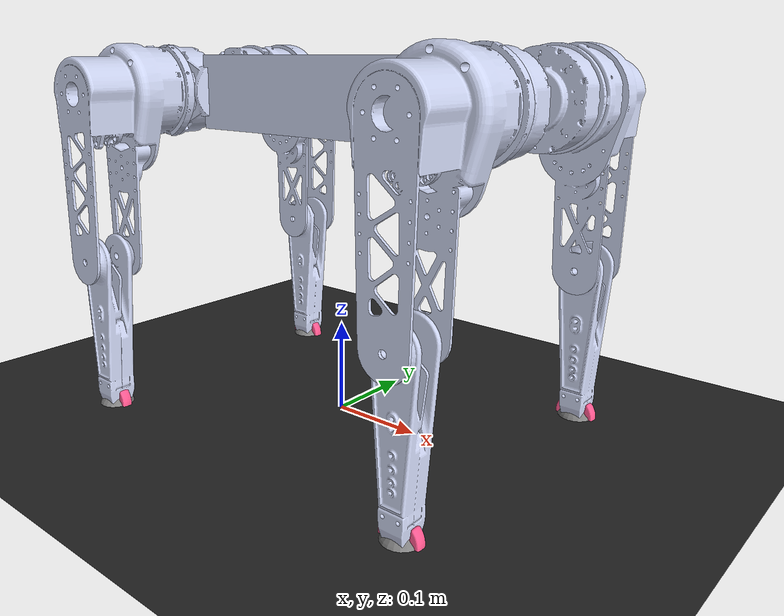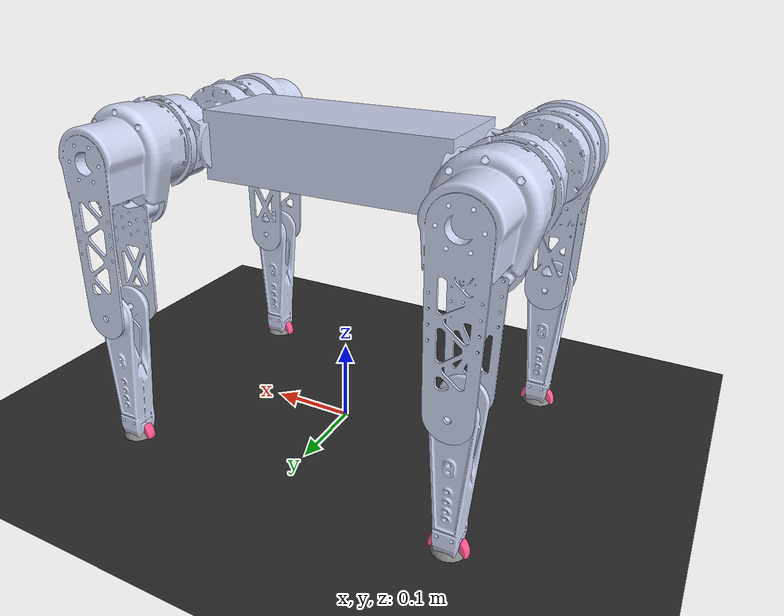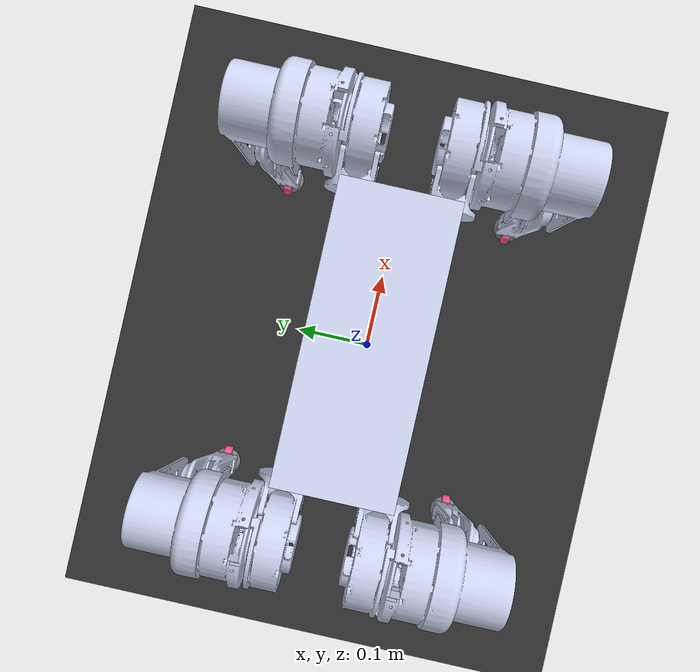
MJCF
<mujoco model="dog_urdf">
  <compiler meshdir="/root/gpufree-data/workspace/legged_gym/resources/robots/dog_urdf/meshes" angle="radian" autolimits="true"/>
  <option timestep="0.005" gravity="0 0 -9.81"/>

  <default>
    <joint damping="0.001" armature="0.01" frictionloss="0.1"/>
  </default>

  <asset>
    <mesh file="FL_hip.STL" name="FL_hip"/>
    <mesh file="FL_thigh.STL" name="FL_thigh"/>
    <mesh file="FL_calf.STL" name="FL_calf"/>
    <mesh file="FL_foot.STL" name="FL_foot"/>
    <mesh file="FR_hip.STL" name="FR_hip"/>
    <mesh file="FR_thigh.STL" name="FR_thigh"/>
    <mesh file="FR_calf.STL" name="FR_calf"/>
    <mesh file="FR_foot.STL" name="FR_foot"/>
    <mesh file="RL_hip.STL" name="RL_hip"/>
    <mesh file="RL_thigh.STL" name="RL_thigh"/>
    <mesh file="RL_calf.STL" name="RL_calf"/>
    <mesh file="RL_foot.STL" name="RL_foot"/>
    <mesh file="RR_hip.STL" name="RR_hip"/>
    <mesh file="RR_thigh.STL" name="RR_thigh"/>
    <mesh file="RR_calf.STL" name="RR_calf"/>
    <mesh file="RR_foot.STL" name="RR_foot"/>

    <texture name="grid" type="2d" builtin="checker" rgb1="0.15 0.15 0.15" rgb2="0.2 0.2 0.2" width="512" height="512"/>
    <texture name="skybox" type="skybox" builtin="gradient" rgb1="0.05 0.05 0.1" rgb2="0.02 0.02 0.05" width="512" height="512"/>
    <material name="groundplane" texture="grid" texrepeat="30 30" texuniform="true" reflectance="0.1"/>
    <material name="wall_material" rgba="0.25 0.25 0.28 1"/>
    <material name="body_material" rgba="0.79 0.82 0.93 1"/>
    <material name="foot_material" rgba="1 0.34 0.56 1"/>
  </asset>

  <worldbody>
    <light pos="0 0 4" dir="0 0 -1" diffuse="0.35 0.35 0.4" ambient="0.1 0.1 0.12" specular="0.1 0.1 0.1" castshadow="true"/>
    <light pos="3 -3 3" dir="-0.5 0.5 -1" diffuse="0.2 0.18 0.15" specular="0.05 0.05 0.05" castshadow="false"/>
    <light pos="-2 2 3" dir="0.3 -0.3 -1" diffuse="0.1 0.1 0.15" castshadow="false"/>
    <geom name="ground" type="plane" size="20 20 0.1" pos="0 0 0" material="groundplane" friction="2.0 0.5 0.01"/>

    <body name="base_link" pos="0 0 0.35">
    <inertial pos="-0.0023050784941594 0.000787651476062384 0.00938957145256008" mass="9.000" diaginertia="0.014806 0.015101 0.015290"/>
      <freejoint/>
      <geom type="box" size="0.15 0.06 0.04" material="body_material"/>

      <body name="FL_hip" pos="0.1426 0.046487 0">
      <inertial pos="0.0586708362293079 0.00174712967469963 -7.8795421490147E-05" mass="0.246" diaginertia="0.000156 0.000264 0.000137"/>
        <joint name="FL_hip_joint" type="hinge" axis="1 0 0" range="-0.5 0.5"/>
        <geom type="mesh" mesh="FL_hip" material="body_material"/>

        <body name="FL_thigh" pos="0.0645133382530963 0.0204632257018415 0">
      <inertial pos="3.96131492397256E-06 0.0530216135226285 -0.0127549994713949" mass="1.047" diaginertia="0.001070 0.001536 0.000827"/>
          <joint name="FL_thigh_joint" type="hinge" axis="0 1 0" range="-1.90 1.92"/>
          <geom type="mesh" mesh="FL_thigh" material="body_material"/>

          <body name="FL_calf" pos="-1.42640517181852E-05 0.0922000000000003 -0.179998920942403">
      <inertial pos="3.05292895786818E-05 -9.36885009469417E-05 -0.0670819670227258" mass="0.187" diaginertia="0.000372 0.000389 0.000025"/>
            <joint name="FL_calf_joint" type="hinge" axis="0 1 0" range="-2.80 -0.28"/>
            <geom type="mesh" mesh="FL_calf" material="body_material" group="1"/>

        <body name="FL_foot" pos="0 0 -0.181256552442634">
      <inertial pos="3.03153155772895E-08 3.64375196681976E-13 0.00474142838422875" mass="0.019" diaginertia="0.000002 0.000003 0.000003"/>
          <geom type="mesh" mesh="FL_foot" material="foot_material" group="1"/>
          <geom type="sphere" size="0.022" friction="0.8 0.5 0.01"/>
        </body>
          </body>
        </body>
      </body>

      <body name="FR_hip" pos="0.1426 -0.046513 0">
      <inertial pos="0.0586708362293078 -0.00172067827101646 8.04098946586701E-05" mass="0.246" diaginertia="0.000156 0.000264 0.000137"/>
        <joint name="FR_hip_joint" type="hinge" axis="-1 0 0" range="-0.5 0.5"/>
        <geom type="mesh" mesh="FR_hip" material="body_material"/>

        <body name="FR_thigh" pos="0.0645133382530963 -0.0204367742981588 0">
      <inertial pos="-3.04126993064119E-05 -0.0530216135200461 -0.0127566141119383" mass="1.047" diaginertia="0.001070 0.001536 0.000827"/>
          <joint name="FR_thigh_joint" type="hinge" axis="0 1 0" range="-1.90 1.92"/>
          <geom type="mesh" mesh="FR_thigh" material="body_material"/>

          <body name="FR_calf" pos="-1.21873416425722E-05 -0.0922 -0.1800005355847">
      <inertial pos="-3.05292895772663E-05 9.36885009465982E-05 -0.067081967022727" mass="0.187" diaginertia="0.000372 0.000389 0.000025"/>
            <joint name="FR_calf_joint" type="hinge" axis="0 1 0" range="-2.80 -0.28"/>
            <geom type="mesh" mesh="FR_calf" material="body_material" group="1"/>

            <body name="FR_foot" pos="0 0 -0.181256552442636">
      <inertial pos="-3.03153155911673E-08 -3.64430707833208E-13 0.0047414283842287" mass="0.019" diaginertia="0.000002 0.000003 0.000003"/>
              <geom type="mesh" mesh="FR_foot" material="foot_material" group="1"/>
              <geom type="sphere" size="0.022" friction="0.8 0.5 0.01"/>
            </body>
          </body>
        </body>
      </body>

      <body name="RL_hip" pos="-0.1426 0.046513 0">
      <inertial pos="-0.0586708362289704 0.00172067827077711 8.04098945089288E-05" mass="0.246" diaginertia="0.000156 0.000264 0.000137"/>
        <joint name="RL_hip_joint" type="hinge" axis="1 0 0" range="-0.5 0.5"/>
        <geom type="mesh" mesh="RL_hip" material="body_material"/>

        <body name="RL_thigh" pos="-0.0645133382530961 0.0204367742981585 0">
      <inertial pos="3.04126992746734E-05 0.0530216135200473 -0.0127566141119536" mass="1.047" diaginertia="0.001070 0.001536 0.000827"/>
          <joint name="RL_thigh_joint" type="hinge" axis="0 1 0" range="-1.90 1.92"/>
          <geom type="mesh" mesh="RL_thigh" material="body_material"/>

          <body name="RL_calf" pos="1.21873416414897E-05 0.0922000000000003 -0.180000535584701">
      <inertial pos="-3.13871287594969E-05 9.36885016845218E-05 -0.0670819666251215" mass="0.187" diaginertia="0.000372 0.000389 0.000025"/>
            <joint name="RL_calf_joint" type="hinge" axis="0 1 0" range="-2.80 -0.28"/>
            <geom type="mesh" mesh="RL_calf" material="body_material" group="1"/>

            <body name="RL_foot" pos="0 0 -0.181256552442636">
      <inertial pos="3.03161081238734E-08 -2.64765639967912E-13 0.00474142838422875" mass="0.019" diaginertia="0.000002 0.000003 0.000003"/>
              <geom type="mesh" mesh="RL_foot" material="foot_material" group="1"/>
              <geom type="sphere" size="0.022" friction="0.8 0.5 0.01"/>
            </body>
          </body>
        </body>
      </body>

      <body name="RR_hip" pos="-0.1426 -0.0464867742981584 0">
      <inertial pos="-0.0586708362293077 -0.00174712967469903 -7.87954214898356E-05" mass="0.246" diaginertia="0.000156 0.000264 0.000137"/>
        <joint name="RR_hip_joint" type="hinge" axis="-1 0 0" range="-0.5 0.5"/>
        <geom type="mesh" mesh="RR_hip" material="body_material"/>

        <body name="RR_thigh" pos="-0.0645133382530962 -0.0204632257018415 0">
      <inertial pos="-3.9613059413246E-06 -0.0530216135200264 -0.0127549994696267" mass="1.047" diaginertia="0.001070 0.001536 0.000827"/>
          <joint name="RR_thigh_joint" type="hinge" axis="0 1 0" range="-1.90 1.92"/>
          <geom type="mesh" mesh="RR_thigh" material="body_material"/>

          <body name="RR_calf" pos="1.42640517169501E-05 -0.0922000000000003 -0.179998920942402">
      <inertial pos="-3.05292895770859E-05 9.36885009470423E-05 -0.0670819670227266" mass="0.187" diaginertia="0.000372 0.000389 0.000025"/>
            <joint name="RR_calf_joint" type="hinge" axis="0 1 0" range="-2.80 -0.28"/>
            <geom type="mesh" mesh="RR_calf" material="body_material" group="1"/>

            <body name="RR_foot" pos="0 0 -0.181256552442637">
      <inertial pos="-3.03153156466784E-08 -3.64319685530745E-13 0.00474142838422886" mass="0.019" diaginertia="0.000002 0.000003 0.000003"/>
              <geom type="mesh" mesh="RR_foot" material="foot_material" group="1"/>
              <geom type="sphere" size="0.022" friction="0.8 0.5 0.01"/>
            </body>
          </body>
        </body>
      </body>
    </body>
  </worldbody>

  <actuator>
    <motor name="FL_hip_joint" joint="FL_hip_joint" ctrllimited="true" ctrlrange="-40 40"/>
    <motor name="FL_thigh_joint" joint="FL_thigh_joint" ctrllimited="true" ctrlrange="-55 55"/>
    <motor name="FL_calf_joint" joint="FL_calf_joint" ctrllimited="true" ctrlrange="-55 55"/>
    <motor name="FR_hip_joint" joint="FR_hip_joint" ctrllimited="true" ctrlrange="-40 40"/>
    <motor name="FR_thigh_joint" joint="FR_thigh_joint" ctrllimited="true" ctrlrange="-55 55"/>
    <motor name="FR_calf_joint" joint="FR_calf_joint" ctrllimited="true" ctrlrange="-55 55"/>
    <motor name="RL_hip_joint" joint="RL_hip_joint" ctrllimited="true" ctrlrange="-40 40"/>
    <motor name="RL_thigh_joint" joint="RL_thigh_joint" ctrllimited="true" ctrlrange="-55 55"/>
    <motor name="RL_calf_joint" joint="RL_calf_joint" ctrllimited="true" ctrlrange="-55 55"/>
    <motor name="RR_hip_joint" joint="RR_hip_joint" ctrllimited="true" ctrlrange="-40 40"/>
    <motor name="RR_thigh_joint" joint="RR_thigh_joint" ctrllimited="true" ctrlrange="-55 55"/>
    <motor name="RR_calf_joint" joint="RR_calf_joint" ctrllimited="true" ctrlrange="-55 55"/>
  </actuator>
</mujoco>
